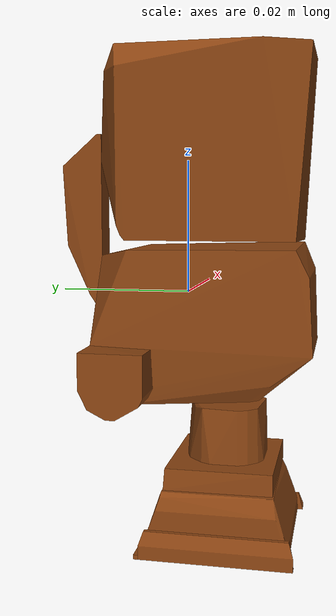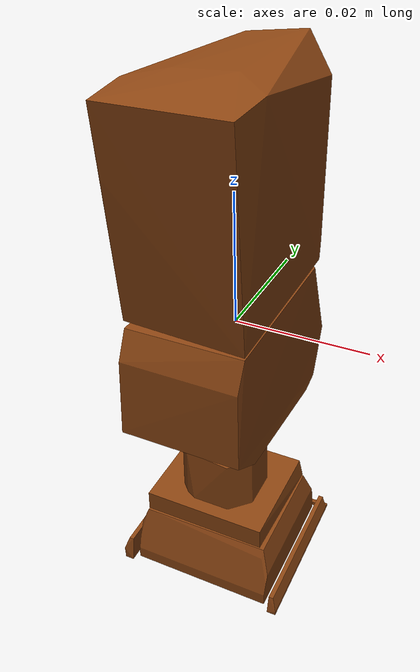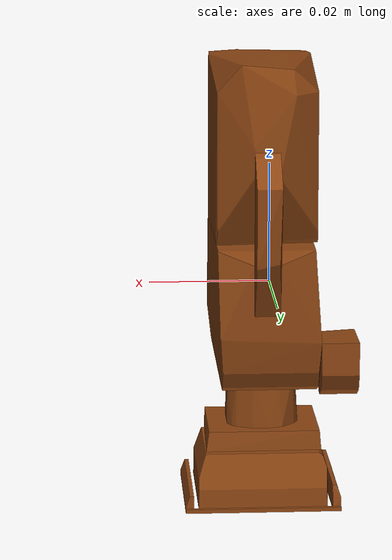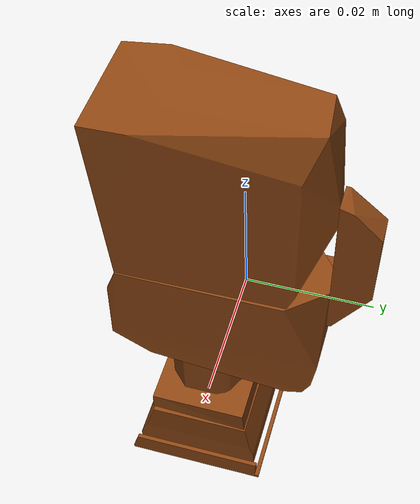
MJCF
<mujoco model="shapenet1-9">
  <asset>
    <mesh file="meshes/shapenet1-9/shapenet1-9_0.stl" name="shapenet1-9_0" scale="0.09 0.09 0.09"/>
    <mesh file="meshes/shapenet1-9/shapenet1-9_1.stl" name="shapenet1-9_1" scale="0.09 0.09 0.09"/>
    <mesh file="meshes/shapenet1-9/shapenet1-9_2.stl" name="shapenet1-9_2" scale="0.09 0.09 0.09"/>
    <mesh file="meshes/shapenet1-9/shapenet1-9_3.stl" name="shapenet1-9_3" scale="0.09 0.09 0.09"/>
    <mesh file="meshes/shapenet1-9/shapenet1-9_4.stl" name="shapenet1-9_4" scale="0.09 0.09 0.09"/>
    <mesh file="meshes/shapenet1-9/shapenet1-9_5.stl" name="shapenet1-9_5" scale="0.09 0.09 0.09"/>
    <mesh file="meshes/shapenet1-9/shapenet1-9_6.stl" name="shapenet1-9_6" scale="0.09 0.09 0.09"/>
    <mesh file="meshes/shapenet1-9/shapenet1-9_7.stl" name="shapenet1-9_7" scale="0.09 0.09 0.09"/>
    <mesh file="meshes/shapenet1-9/shapenet1-9_8.stl" name="shapenet1-9_8" scale="0.09 0.09 0.09"/>
    <mesh file="meshes/shapenet1-9/shapenet1-9_9.stl" name="shapenet1-9_9" scale="0.09 0.09 0.09"/>
  </asset>
  <worldbody>
    <body>
      <body name="collision">
        <geom pos="0 0 0" mesh="shapenet1-9_0" type="mesh" solimp="0.998 0.998 0.001" solref="0.001 1" density="100" friction="0.95 0.3 0.1" rgba="0.55 0.27 0.07 1" group="1" condim="4"/>
        <geom pos="0 0 0" mesh="shapenet1-9_1" type="mesh" solimp="0.998 0.998 0.001" solref="0.001 1" density="100" friction="0.95 0.3 0.1" rgba="0.55 0.27 0.07 1" group="1" condim="4"/>
        <geom pos="0 0 0" mesh="shapenet1-9_2" type="mesh" solimp="0.998 0.998 0.001" solref="0.001 1" density="100" friction="0.95 0.3 0.1" rgba="0.55 0.27 0.07 1" group="1" condim="4"/>
        <geom pos="0 0 0" mesh="shapenet1-9_3" type="mesh" solimp="0.998 0.998 0.001" solref="0.001 1" density="100" friction="0.95 0.3 0.1" rgba="0.55 0.27 0.07 1" group="1" condim="4"/>
        <geom pos="0 0 0" mesh="shapenet1-9_4" type="mesh" solimp="0.998 0.998 0.001" solref="0.001 1" density="100" friction="0.95 0.3 0.1" rgba="0.55 0.27 0.07 1" group="1" condim="4"/>
        <geom pos="0 0 0" mesh="shapenet1-9_5" type="mesh" solimp="0.998 0.998 0.001" solref="0.001 1" density="100" friction="0.95 0.3 0.1" rgba="0.55 0.27 0.07 1" group="1" condim="4"/>
        <geom pos="0 0 0" mesh="shapenet1-9_6" type="mesh" solimp="0.998 0.998 0.001" solref="0.001 1" density="100" friction="0.95 0.3 0.1" rgba="0.55 0.27 0.07 1" group="1" condim="4"/>
        <geom pos="0 0 0" mesh="shapenet1-9_7" type="mesh" solimp="0.998 0.998 0.001" solref="0.001 1" density="100" friction="0.95 0.3 0.1" rgba="0.55 0.27 0.07 1" group="1" condim="4"/>
        <geom pos="0 0 0" mesh="shapenet1-9_8" type="mesh" solimp="0.998 0.998 0.001" solref="0.001 1" density="100" friction="0.95 0.3 0.1" rgba="0.55 0.27 0.07 1" group="1" condim="4"/>
        <geom pos="0 0 0" mesh="shapenet1-9_9" type="mesh" solimp="0.998 0.998 0.001" solref="0.001 1" density="100" friction="0.95 0.3 0.1" rgba="0.55 0.27 0.07 1" group="1" condim="4"/>
      </body>
      <body name="visual">
        <geom pos="0 0 0" mesh="shapenet1-9_0" type="mesh" rgba="0.1 0.1 0.1 1" conaffinity="0" contype="0" group="0" mass="0.0001"/>
        <geom pos="0 0 0" mesh="shapenet1-9_1" type="mesh" rgba="0.1 0.1 0.1 1" conaffinity="0" contype="0" group="0" mass="0.0001"/>
        <geom pos="0 0 0" mesh="shapenet1-9_2" type="mesh" rgba="0.1 0.1 0.1 1" conaffinity="0" contype="0" group="0" mass="0.0001"/>
        <geom pos="0 0 0" mesh="shapenet1-9_3" type="mesh" rgba="0.1 0.1 0.1 1" conaffinity="0" contype="0" group="0" mass="0.0001"/>
        <geom pos="0 0 0" mesh="shapenet1-9_4" type="mesh" rgba="0.1 0.1 0.1 1" conaffinity="0" contype="0" group="0" mass="0.0001"/>
        <geom pos="0 0 0" mesh="shapenet1-9_5" type="mesh" rgba="0.1 0.1 0.1 1" conaffinity="0" contype="0" group="0" mass="0.0001"/>
        <geom pos="0 0 0" mesh="shapenet1-9_6" type="mesh" rgba="0.1 0.1 0.1 1" conaffinity="0" contype="0" group="0" mass="0.0001"/>
        <geom pos="0 0 0" mesh="shapenet1-9_7" type="mesh" rgba="0.1 0.1 0.1 1" conaffinity="0" contype="0" group="0" mass="0.0001"/>
        <geom pos="0 0 0" mesh="shapenet1-9_8" type="mesh" rgba="0.1 0.1 0.1 1" conaffinity="0" contype="0" group="0" mass="0.0001"/>
        <geom pos="0 0 0" mesh="shapenet1-9_9" type="mesh" rgba="0.1 0.1 0.1 1" conaffinity="0" contype="0" group="0" mass="0.0001"/>
      </body>
      <site rgba="0 0 0 0" size="0.005" pos="0 0 -0.06" name="bottom_site"/>
      <site rgba="0 0 0 0" size="0.005" pos="0 0 0.04" name="top_site"/>
      <site rgba="0 0 0 0" size="0.005" pos="0.025 0.025 0" name="horizontal_radius_site"/>
    </body>
  </worldbody>
</mujoco>
